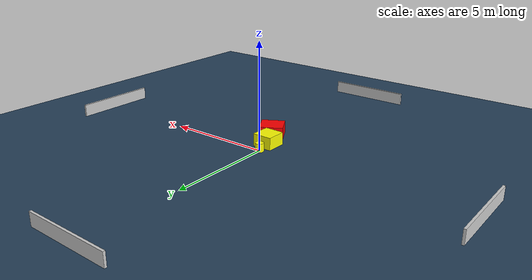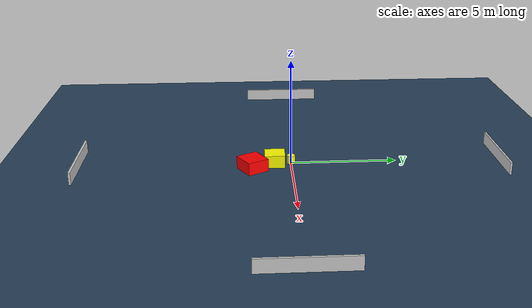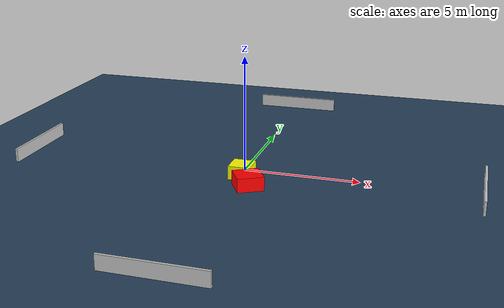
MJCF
<?xml version="1.0" ?>
<mujoco model="generated_environment">
  <option timestep="0.01" integrator="RK4" cone="elliptic"/>
  <default>
    <geom density="1"/>
  </default>
  <asset>
    <texture builtin="gradient" height="3072" name="skybox" rgb1="0.3 0.5 0.7" rgb2="0 0 0" type="skybox" width="512"/>
    <texture builtin="checker" height="300" name="groundplane" rgb1="0.2 0.3 0.4" rgb2="0.1 0.2 0.3" type="2d" width="300"/>
    <material name="groundplane" reflectance="0.2" texrepeat="5 5" texture="groundplane"/>
  </asset>
  <worldbody>
    <light dir="0 0 -1" directional="true" pos="0 0 1.5"/>
    <geom condim="3" friction="0.5 0.005 0.001" material="groundplane" name="floor" pos="0 0 0" size="0 0 0.05" type="plane"/>
    <body name="walls">
      <geom name="wall_1" condim="4" pos="-10.0 0.0 0.3" rgba="0.800000011920929 0.800000011920929 0.800000011920929 1.0" size="0.05 2.0 0.3" type="box"/>
      <geom name="wall_2" condim="4" pos="10.0 0.0 0.3" rgba="0.800000011920929 0.800000011920929 0.800000011920929 1.0" size="0.05 2.0 0.3" type="box"/>
      <geom name="wall_3" condim="4" pos="0.0 -10.0 0.3" rgba="0.800000011920929 0.800000011920929 0.800000011920929 1.0" size="2.0 0.05 0.3" type="box"/>
      <geom name="wall_4" condim="4" pos="0.0 10.0 0.3" rgba="0.800000011920929 0.800000011920929 0.800000011920929 1.0" size="2.0 0.05 0.3" type="box"/>
    </body>
    <body name="robot">
      <joint name="joint_x" type="slide" pos="0 0 0" axis="1 0 0"/>
      <joint name="joint_y" type="slide" pos="0 0 0" axis="0 1 0"/>
      <geom name="robot" type="cylinder" pos="0.0 0.0 0.2" size="0.2 0.2 0.0" mass="5.0" friction="1.0 0.005 0.0001" condim="4" rgba="1.0 1.0 0.0 1.0"/>
    </body>
    <body name="obstacle_1_movable">
      <geom name="obstacle_1_movable" condim="4" pos="0.12460028170073617 -0.7874577799301 0.3" euler="0 0 359.5586669121148" friction="0.0 0.005 0.001" rgba="1.0 1.0 0.0 1.0" size="0.4771168662088557 0.4803658200144184 0.3" type="box" mass="0.1"/>
      <joint type="free"/>
    </body>
    <body name="obstacle_2_static">
      <geom name="obstacle_2_static" condim="4" pos="0.6985083257723783 -1.8425419820485198 0.3" euler="0 0 300.14045103417976" friction="0.0 0.005 0.001" rgba="1.0 0.0 0.0 1.0" size="0.5248644319097097 0.5598010340118165 0.3" type="box"/>
    </body>
  </worldbody>
  <actuator>
    <motor name="actuator_x" joint="joint_x" gear="1" ctrlrange="-1 1"/>
    <motor name="actuator_y" joint="joint_y" gear="1" ctrlrange="-1 1"/>
  </actuator>
</mujoco>
